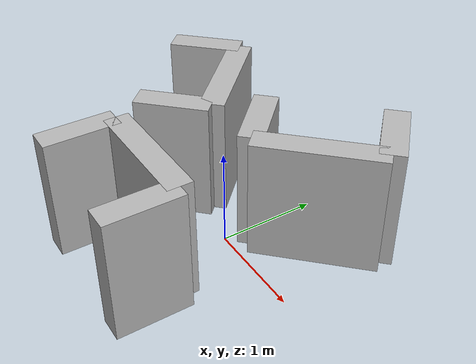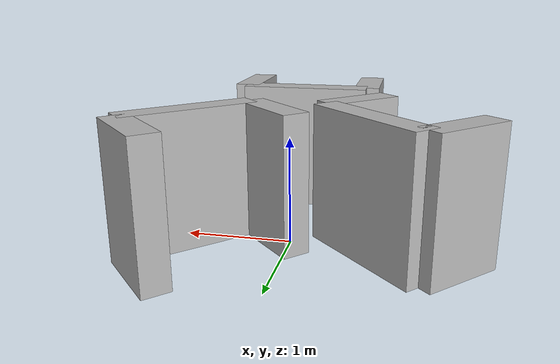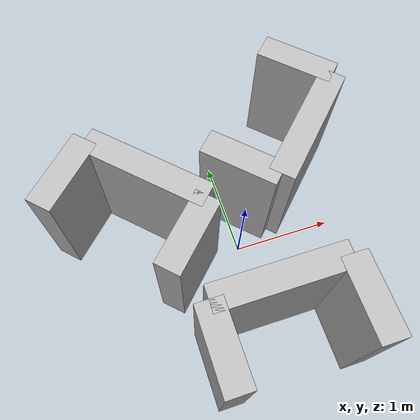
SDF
<sdf version='1.6'>
  <model name='obstacles_stage6'>
    <pose frame=''>0 0 0 0 0 0</pose>

    <!-- Left U-shaped obstacle -->
    <link name='obstacle_left'>
      <pose frame=''>-0.75 0.5 0 0 0 2.35619</pose>
      <collision name='u_obstacle_bottom_left'>
        <pose>0 0 0.75 0 0 0</pose>
        <geometry>
          <box>
            <size>1.2 0.24 1.2</size>
          </box>
        </geometry>
      </collision>
      <visual name='u_obstacle_bottom_left'>
        <pose>0 0 0.75 0 0 0</pose>
        <geometry>
          <box>
            <size>1.2 0.24 1.2</size>
          </box>
        </geometry>
      </visual>
      <collision name='u_obstacle_left_left'>
        <pose>-0.6 0.36 0.75 0 0 0</pose>
        <geometry>
          <box>
            <size>0.24 0.72 1.2</size>
          </box>
        </geometry>
      </collision>
      <visual name='u_obstacle_left_left'>
        <pose>-0.6 0.36 0.75 0 0 0</pose>
        <geometry>
          <box>
            <size>0.24 0.72 1.2</size>
          </box>
        </geometry>
      </visual>
      <collision name='u_obstacle_right_left'>
        <pose>0.6 0.36 0.75 0 0 0</pose>
        <geometry>
          <box>
            <size>0.24 0.72 1.2</size>
          </box>
        </geometry>
      </collision>
      <visual name='u_obstacle_right_left'>
        <pose>0.6 0.36 0.75 0 0 0</pose>
        <geometry>
          <box>
            <size>0.24 0.72 1.2</size>
          </box>
        </geometry>
      </visual>
    </link>

    <!-- Right U-shaped obstacle -->
    <link name='obstacle_right'>
      <pose frame=''>0.75 0.5 0 0 0 -2.35619</pose>
      <collision name='u_obstacle_bottom_right'>
        <pose>0 0 0.75 0 0 0</pose>
        <geometry>
          <box>
            <size>1.2 0.24 1.2</size>
          </box>
        </geometry>
      </collision>
      <visual name='u_obstacle_bottom_right'>
        <pose>0 0 0.75 0 0 0</pose>
        <geometry>
          <box>
            <size>1.2 0.24 1.2</size>
          </box>
        </geometry>
      </visual>
      <collision name='u_obstacle_left_right'>
        <pose>0.6 -0.36 0.75 0 0 0</pose>
        <geometry>
          <box>
            <size>0.24 0.72 1.2</size>
          </box>
        </geometry>
      </collision>
      <visual name='u_obstacle_left_right'>
        <pose>0.6 -0.36 0.75 0 0 0</pose>
        <geometry>
          <box>
            <size>0.24 0.72 1.2</size>
          </box>
        </geometry>
      </visual>
      <collision name='u_obstacle_right_right'>
        <pose>-0.6 -0.36 0.75 0 0 0</pose>
        <geometry>
          <box>
            <size>0.24 0.72 1.2</size>
          </box>
        </geometry>
      </collision>
      <visual name='u_obstacle_right_right'>
        <pose>-0.6 -0.36 0.75 0 0 0</pose>
        <geometry>
          <box>
            <size>0.24 0.72 1.2</size>
          </box>
        </geometry>
      </visual>
    </link>

    <!-- Central U-shaped obstacle, rotated 180 degrees -->
    <link name='obstacle_center'>
      <pose frame=''>0 -0.75 0 0 0 3.14159</pose>
      <collision name='u_obstacle_bottom_center'>
        <pose>0 0 0.75 0 0 0</pose>
        <geometry>
          <box>
            <size>1.2 0.24 1.2</size>
          </box>
        </geometry>
      </collision>
      <visual name='u_obstacle_bottom_center'>
        <pose>0 0 0.75 0 0 0</pose>
        <geometry>
          <box>
            <size>1.2 0.24 1.2</size>
          </box>
        </geometry>
      </visual>
      <collision name='u_obstacle_left_center'>
        <pose>-0.6 0.36 0.75 0 0 0</pose>
        <geometry>
          <box>
            <size>0.24 0.72 1.2</size>
          </box>
        </geometry>
      </collision>
      <visual name='u_obstacle_left_center'>
        <pose>-0.6 0.36 0.75 0 0 0</pose>
        <geometry>
          <box>
            <size>0.24 0.72 1.2</size>
          </box>
        </geometry>
      </visual>
      <collision name='u_obstacle_right_center'>
        <pose>0.6 0.36 0.75 0 0 0</pose>
        <geometry>
          <box>
            <size>0.24 0.72 1.2</size>
          </box>
        </geometry>
      </collision>
      <visual name='u_obstacle_right_center'>
        <pose>0.6 0.36 0.75 0 0 0</pose>
        <geometry>
          <box>
            <size>0.24 0.72 1.2</size>
          </box>
        </geometry>
      </visual>
    </link>

    <static>1</static>
  </model>
</sdf>
